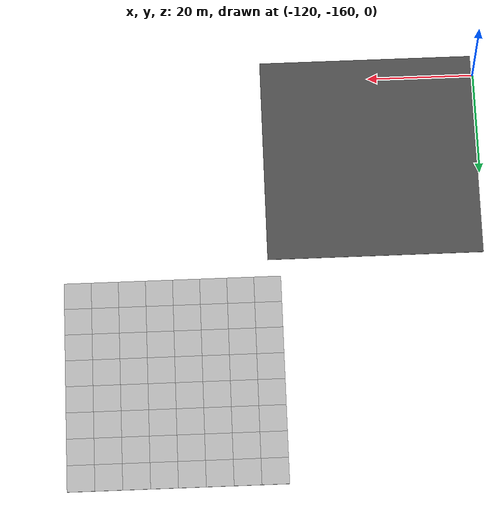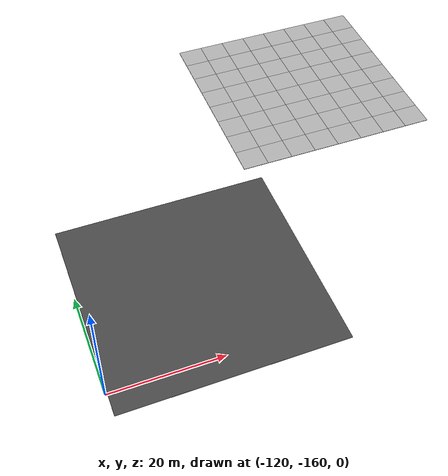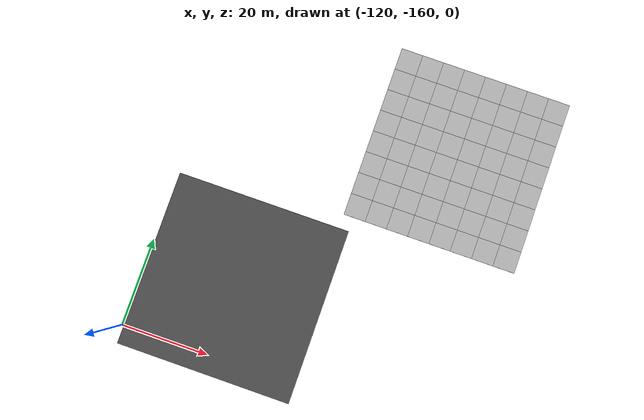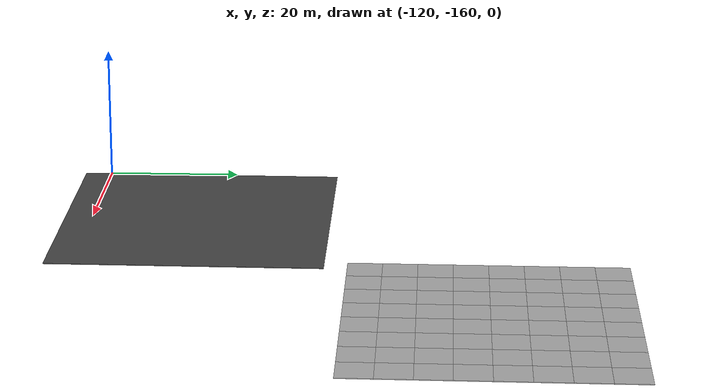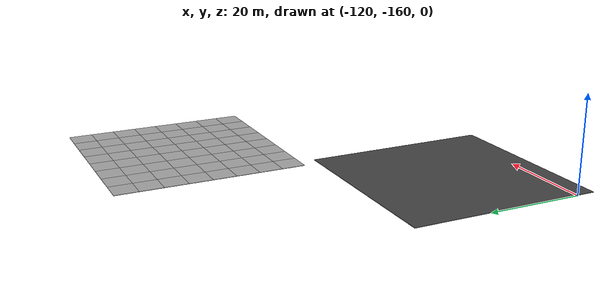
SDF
<sdf version="1.7">
 <world name="default">
  <model name="mud_plane_40x40_6">
   <model name="mud_plane_20x20">
    <model name="mud_plane">
     <static>1</static>
     <link name="link">
      <collision name="collision"><geometry><box><size>10 10 0.1</size></box></geometry></collision>
      <visual name="visual_1">
       <pose>-2.5 2.5 -0.05 0 -0 0</pose>
       <cast_shadows>0</cast_shadows>
       <geometry><box><size>5 5 0.1</size></box></geometry>
       <material>
        <script>
         <uri>model://mud_plane/materials/scripts</uri>
         <uri>model://mud_plane/materials/textures</uri>
         <name>vrc/mud</name>
        </script>
       </material>
      </visual>
      <visual name="visual_2">
       <pose>2.5 2.5 -0.05 0 -0 0</pose>
       <cast_shadows>0</cast_shadows>
       <geometry><box><size>5 5 0.1</size></box></geometry>
       <material>
        <script>
         <uri>model://mud_plane/materials/scripts</uri>
         <uri>model://mud_plane/materials/textures</uri>
         <name>vrc/mud</name>
        </script>
       </material>
      </visual>
      <visual name="visual_3">
       <pose>2.5 -2.5 -0.05 0 -0 0</pose>
       <cast_shadows>0</cast_shadows>
       <geometry><box><size>5 5 0.1</size></box></geometry>
       <material>
        <script>
         <uri>model://mud_plane/materials/scripts</uri>
         <uri>model://mud_plane/materials/textures</uri>
         <name>vrc/mud</name>
        </script>
       </material>
      </visual>
      <visual name="visual_4">
       <pose>-2.5 -2.5 -0.05 0 -0 0</pose>
       <cast_shadows>0</cast_shadows>
       <geometry><box><size>5 5 0.1</size></box></geometry>
       <material>
        <script>
         <uri>model://mud_plane/materials/scripts</uri>
         <uri>model://mud_plane/materials/textures</uri>
         <name>vrc/mud</name>
        </script>
       </material>
      </visual>
     </link>
     <pose>-4.99986 -4.99991 0 0 -0 0</pose>
    </model>
    <model name="mud_plane_0">
     <static>1</static>
     <link name="link">
      <collision name="collision"><geometry><box><size>10 10 0.1</size></box></geometry></collision>
      <visual name="visual_1">
       <pose>-2.5 2.5 -0.05 0 -0 0</pose>
       <cast_shadows>0</cast_shadows>
       <geometry><box><size>5 5 0.1</size></box></geometry>
       <material>
        <script>
         <uri>model://mud_plane/materials/scripts</uri>
         <uri>model://mud_plane/materials/textures</uri>
         <name>vrc/mud</name>
        </script>
       </material>
      </visual>
      <visual name="visual_2">
       <pose>2.5 2.5 -0.05 0 -0 0</pose>
       <cast_shadows>0</cast_shadows>
       <geometry><box><size>5 5 0.1</size></box></geometry>
       <material>
        <script>
         <uri>model://mud_plane/materials/scripts</uri>
         <uri>model://mud_plane/materials/textures</uri>
         <name>vrc/mud</name>
        </script>
       </material>
      </visual>
      <visual name="visual_3">
       <pose>2.5 -2.5 -0.05 0 -0 0</pose>
       <cast_shadows>0</cast_shadows>
       <geometry><box><size>5 5 0.1</size></box></geometry>
       <material>
        <script>
         <uri>model://mud_plane/materials/scripts</uri>
         <uri>model://mud_plane/materials/textures</uri>
         <name>vrc/mud</name>
        </script>
       </material>
      </visual>
      <visual name="visual_4">
       <pose>-2.5 -2.5 -0.05 0 -0 0</pose>
       <cast_shadows>0</cast_shadows>
       <geometry><box><size>5 5 0.1</size></box></geometry>
       <material>
        <script>
         <uri>model://mud_plane/materials/scripts</uri>
         <uri>model://mud_plane/materials/textures</uri>
         <name>vrc/mud</name>
        </script>
       </material>
      </visual>
     </link>
     <pose>-4.99946 4.99954 0 0 -0 0</pose>
    </model>
    <model name="mud_plane_1">
     <static>1</static>
     <link name="link">
      <collision name="collision"><geometry><box><size>10 10 0.1</size></box></geometry></collision>
      <visual name="visual_1">
       <pose>-2.5 2.5 -0.05 0 -0 0</pose>
       <cast_shadows>0</cast_shadows>
       <geometry><box><size>5 5 0.1</size></box></geometry>
       <material>
        <script>
         <uri>model://mud_plane/materials/scripts</uri>
         <uri>model://mud_plane/materials/textures</uri>
         <name>vrc/mud</name>
        </script>
       </material>
      </visual>
      <visual name="visual_2">
       <pose>2.5 2.5 -0.05 0 -0 0</pose>
       <cast_shadows>0</cast_shadows>
       <geometry><box><size>5 5 0.1</size></box></geometry>
       <material>
        <script>
         <uri>model://mud_plane/materials/scripts</uri>
         <uri>model://mud_plane/materials/textures</uri>
         <name>vrc/mud</name>
        </script>
       </material>
      </visual>
      <visual name="visual_3">
       <pose>2.5 -2.5 -0.05 0 -0 0</pose>
       <cast_shadows>0</cast_shadows>
       <geometry><box><size>5 5 0.1</size></box></geometry>
       <material>
        <script>
         <uri>model://mud_plane/materials/scripts</uri>
         <uri>model://mud_plane/materials/textures</uri>
         <name>vrc/mud</name>
        </script>
       </material>
      </visual>
      <visual name="visual_4">
       <pose>-2.5 -2.5 -0.05 0 -0 0</pose>
       <cast_shadows>0</cast_shadows>
       <geometry><box><size>5 5 0.1</size></box></geometry>
       <material>
        <script>
         <uri>model://mud_plane/materials/scripts</uri>
         <uri>model://mud_plane/materials/textures</uri>
         <name>vrc/mud</name>
        </script>
       </material>
      </visual>
     </link>
     <pose>4.99964 -4.99949 0 0 -0 0</pose>
    </model>
    <model name="mud_plane_2">
     <static>1</static>
     <link name="link">
      <collision name="collision"><geometry><box><size>10 10 0.1</size></box></geometry></collision>
      <visual name="visual_1">
       <pose>-2.5 2.5 -0.05 0 -0 0</pose>
       <cast_shadows>0</cast_shadows>
       <geometry><box><size>5 5 0.1</size></box></geometry>
       <material>
        <script>
         <uri>model://mud_plane/materials/scripts</uri>
         <uri>model://mud_plane/materials/textures</uri>
         <name>vrc/mud</name>
        </script>
       </material>
      </visual>
      <visual name="visual_2">
       <pose>2.5 2.5 -0.05 0 -0 0</pose>
       <cast_shadows>0</cast_shadows>
       <geometry><box><size>5 5 0.1</size></box></geometry>
       <material>
        <script>
         <uri>model://mud_plane/materials/scripts</uri>
         <uri>model://mud_plane/materials/textures</uri>
         <name>vrc/mud</name>
        </script>
       </material>
      </visual>
      <visual name="visual_3">
       <pose>2.5 -2.5 -0.05 0 -0 0</pose>
       <cast_shadows>0</cast_shadows>
       <geometry><box><size>5 5 0.1</size></box></geometry>
       <material>
        <script>
         <uri>model://mud_plane/materials/scripts</uri>
         <uri>model://mud_plane/materials/textures</uri>
         <name>vrc/mud</name>
        </script>
       </material>
      </visual>
      <visual name="visual_4">
       <pose>-2.5 -2.5 -0.05 0 -0 0</pose>
       <cast_shadows>0</cast_shadows>
       <geometry><box><size>5 5 0.1</size></box></geometry>
       <material>
        <script>
         <uri>model://mud_plane/materials/scripts</uri>
         <uri>model://mud_plane/materials/textures</uri>
         <name>vrc/mud</name>
        </script>
       </material>
      </visual>
     </link>
     <pose>4.99967 4.99986 0 0 -0 0</pose>
    </model>
    <static>0</static>
    <pose>-9.99895 9.99843 0 0 -0 0</pose>
   </model>
   <model name="mud_plane_20x20_0">
    <model name="mud_plane">
     <static>1</static>
     <link name="link">
      <collision name="collision"><geometry><box><size>10 10 0.1</size></box></geometry></collision>
      <visual name="visual_1">
       <pose>-2.5 2.5 -0.05 0 -0 0</pose>
       <cast_shadows>0</cast_shadows>
       <geometry><box><size>5 5 0.1</size></box></geometry>
       <material>
        <script>
         <uri>model://mud_plane/materials/scripts</uri>
         <uri>model://mud_plane/materials/textures</uri>
         <name>vrc/mud</name>
        </script>
       </material>
      </visual>
      <visual name="visual_2">
       <pose>2.5 2.5 -0.05 0 -0 0</pose>
       <cast_shadows>0</cast_shadows>
       <geometry><box><size>5 5 0.1</size></box></geometry>
       <material>
        <script>
         <uri>model://mud_plane/materials/scripts</uri>
         <uri>model://mud_plane/materials/textures</uri>
         <name>vrc/mud</name>
        </script>
       </material>
      </visual>
      <visual name="visual_3">
       <pose>2.5 -2.5 -0.05 0 -0 0</pose>
       <cast_shadows>0</cast_shadows>
       <geometry><box><size>5 5 0.1</size></box></geometry>
       <material>
        <script>
         <uri>model://mud_plane/materials/scripts</uri>
         <uri>model://mud_plane/materials/textures</uri>
         <name>vrc/mud</name>
        </script>
       </material>
      </visual>
      <visual name="visual_4">
       <pose>-2.5 -2.5 -0.05 0 -0 0</pose>
       <cast_shadows>0</cast_shadows>
       <geometry><box><size>5 5 0.1</size></box></geometry>
       <material>
        <script>
         <uri>model://mud_plane/materials/scripts</uri>
         <uri>model://mud_plane/materials/textures</uri>
         <name>vrc/mud</name>
        </script>
       </material>
      </visual>
     </link>
     <pose>-4.99986 -4.99991 0 0 -0 0</pose>
    </model>
    <model name="mud_plane_0">
     <static>1</static>
     <link name="link">
      <collision name="collision"><geometry><box><size>10 10 0.1</size></box></geometry></collision>
      <visual name="visual_1">
       <pose>-2.5 2.5 -0.05 0 -0 0</pose>
       <cast_shadows>0</cast_shadows>
       <geometry><box><size>5 5 0.1</size></box></geometry>
       <material>
        <script>
         <uri>model://mud_plane/materials/scripts</uri>
         <uri>model://mud_plane/materials/textures</uri>
         <name>vrc/mud</name>
        </script>
       </material>
      </visual>
      <visual name="visual_2">
       <pose>2.5 2.5 -0.05 0 -0 0</pose>
       <cast_shadows>0</cast_shadows>
       <geometry><box><size>5 5 0.1</size></box></geometry>
       <material>
        <script>
         <uri>model://mud_plane/materials/scripts</uri>
         <uri>model://mud_plane/materials/textures</uri>
         <name>vrc/mud</name>
        </script>
       </material>
      </visual>
      <visual name="visual_3">
       <pose>2.5 -2.5 -0.05 0 -0 0</pose>
       <cast_shadows>0</cast_shadows>
       <geometry><box><size>5 5 0.1</size></box></geometry>
       <material>
        <script>
         <uri>model://mud_plane/materials/scripts</uri>
         <uri>model://mud_plane/materials/textures</uri>
         <name>vrc/mud</name>
        </script>
       </material>
      </visual>
      <visual name="visual_4">
       <pose>-2.5 -2.5 -0.05 0 -0 0</pose>
       <cast_shadows>0</cast_shadows>
       <geometry><box><size>5 5 0.1</size></box></geometry>
       <material>
        <script>
         <uri>model://mud_plane/materials/scripts</uri>
         <uri>model://mud_plane/materials/textures</uri>
         <name>vrc/mud</name>
        </script>
       </material>
      </visual>
     </link>
     <pose>-4.99946 4.99954 0 0 -0 0</pose>
    </model>
    <model name="mud_plane_1">
     <static>1</static>
     <link name="link">
      <collision name="collision"><geometry><box><size>10 10 0.1</size></box></geometry></collision>
      <visual name="visual_1">
       <pose>-2.5 2.5 -0.05 0 -0 0</pose>
       <cast_shadows>0</cast_shadows>
       <geometry><box><size>5 5 0.1</size></box></geometry>
       <material>
        <script>
         <uri>model://mud_plane/materials/scripts</uri>
         <uri>model://mud_plane/materials/textures</uri>
         <name>vrc/mud</name>
        </script>
       </material>
      </visual>
      <visual name="visual_2">
       <pose>2.5 2.5 -0.05 0 -0 0</pose>
       <cast_shadows>0</cast_shadows>
       <geometry><box><size>5 5 0.1</size></box></geometry>
       <material>
        <script>
         <uri>model://mud_plane/materials/scripts</uri>
         <uri>model://mud_plane/materials/textures</uri>
         <name>vrc/mud</name>
        </script>
       </material>
      </visual>
      <visual name="visual_3">
       <pose>2.5 -2.5 -0.05 0 -0 0</pose>
       <cast_shadows>0</cast_shadows>
       <geometry><box><size>5 5 0.1</size></box></geometry>
       <material>
        <script>
         <uri>model://mud_plane/materials/scripts</uri>
         <uri>model://mud_plane/materials/textures</uri>
         <name>vrc/mud</name>
        </script>
       </material>
      </visual>
      <visual name="visual_4">
       <pose>-2.5 -2.5 -0.05 0 -0 0</pose>
       <cast_shadows>0</cast_shadows>
       <geometry><box><size>5 5 0.1</size></box></geometry>
       <material>
        <script>
         <uri>model://mud_plane/materials/scripts</uri>
         <uri>model://mud_plane/materials/textures</uri>
         <name>vrc/mud</name>
        </script>
       </material>
      </visual>
     </link>
     <pose>4.99964 -4.99949 0 0 -0 0</pose>
    </model>
    <model name="mud_plane_2">
     <static>1</static>
     <link name="link">
      <collision name="collision"><geometry><box><size>10 10 0.1</size></box></geometry></collision>
      <visual name="visual_1">
       <pose>-2.5 2.5 -0.05 0 -0 0</pose>
       <cast_shadows>0</cast_shadows>
       <geometry><box><size>5 5 0.1</size></box></geometry>
       <material>
        <script>
         <uri>model://mud_plane/materials/scripts</uri>
         <uri>model://mud_plane/materials/textures</uri>
         <name>vrc/mud</name>
        </script>
       </material>
      </visual>
      <visual name="visual_2">
       <pose>2.5 2.5 -0.05 0 -0 0</pose>
       <cast_shadows>0</cast_shadows>
       <geometry><box><size>5 5 0.1</size></box></geometry>
       <material>
        <script>
         <uri>model://mud_plane/materials/scripts</uri>
         <uri>model://mud_plane/materials/textures</uri>
         <name>vrc/mud</name>
        </script>
       </material>
      </visual>
      <visual name="visual_3">
       <pose>2.5 -2.5 -0.05 0 -0 0</pose>
       <cast_shadows>0</cast_shadows>
       <geometry><box><size>5 5 0.1</size></box></geometry>
       <material>
        <script>
         <uri>model://mud_plane/materials/scripts</uri>
         <uri>model://mud_plane/materials/textures</uri>
         <name>vrc/mud</name>
        </script>
       </material>
      </visual>
      <visual name="visual_4">
       <pose>-2.5 -2.5 -0.05 0 -0 0</pose>
       <cast_shadows>0</cast_shadows>
       <geometry><box><size>5 5 0.1</size></box></geometry>
       <material>
        <script>
         <uri>model://mud_plane/materials/scripts</uri>
         <uri>model://mud_plane/materials/textures</uri>
         <name>vrc/mud</name>
        </script>
       </material>
      </visual>
     </link>
     <pose>4.99967 4.99986 0 0 -0 0</pose>
    </model>
    <static>0</static>
    <pose>9.99933 9.9997 0 0 -0 0</pose>
   </model>
   <model name="mud_plane_20x20_1">
    <model name="mud_plane">
     <static>1</static>
     <link name="link">
      <collision name="collision"><geometry><box><size>10 10 0.1</size></box></geometry></collision>
      <visual name="visual_1">
       <pose>-2.5 2.5 -0.05 0 -0 0</pose>
       <cast_shadows>0</cast_shadows>
       <geometry><box><size>5 5 0.1</size></box></geometry>
       <material>
        <script>
         <uri>model://mud_plane/materials/scripts</uri>
         <uri>model://mud_plane/materials/textures</uri>
         <name>vrc/mud</name>
        </script>
       </material>
      </visual>
      <visual name="visual_2">
       <pose>2.5 2.5 -0.05 0 -0 0</pose>
       <cast_shadows>0</cast_shadows>
       <geometry><box><size>5 5 0.1</size></box></geometry>
       <material>
        <script>
         <uri>model://mud_plane/materials/scripts</uri>
         <uri>model://mud_plane/materials/textures</uri>
         <name>vrc/mud</name>
        </script>
       </material>
      </visual>
      <visual name="visual_3">
       <pose>2.5 -2.5 -0.05 0 -0 0</pose>
       <cast_shadows>0</cast_shadows>
       <geometry><box><size>5 5 0.1</size></box></geometry>
       <material>
        <script>
         <uri>model://mud_plane/materials/scripts</uri>
         <uri>model://mud_plane/materials/textures</uri>
         <name>vrc/mud</name>
        </script>
       </material>
      </visual>
      <visual name="visual_4">
       <pose>-2.5 -2.5 -0.05 0 -0 0</pose>
       <cast_shadows>0</cast_shadows>
       <geometry><box><size>5 5 0.1</size></box></geometry>
       <material>
        <script>
         <uri>model://mud_plane/materials/scripts</uri>
         <uri>model://mud_plane/materials/textures</uri>
         <name>vrc/mud</name>
        </script>
       </material>
      </visual>
     </link>
     <pose>-4.99986 -4.99991 0 0 -0 0</pose>
    </model>
    <model name="mud_plane_0">
     <static>1</static>
     <link name="link">
      <collision name="collision"><geometry><box><size>10 10 0.1</size></box></geometry></collision>
      <visual name="visual_1">
       <pose>-2.5 2.5 -0.05 0 -0 0</pose>
       <cast_shadows>0</cast_shadows>
       <geometry><box><size>5 5 0.1</size></box></geometry>
       <material>
        <script>
         <uri>model://mud_plane/materials/scripts</uri>
         <uri>model://mud_plane/materials/textures</uri>
         <name>vrc/mud</name>
        </script>
       </material>
      </visual>
      <visual name="visual_2">
       <pose>2.5 2.5 -0.05 0 -0 0</pose>
       <cast_shadows>0</cast_shadows>
       <geometry><box><size>5 5 0.1</size></box></geometry>
       <material>
        <script>
         <uri>model://mud_plane/materials/scripts</uri>
         <uri>model://mud_plane/materials/textures</uri>
         <name>vrc/mud</name>
        </script>
       </material>
      </visual>
      <visual name="visual_3">
       <pose>2.5 -2.5 -0.05 0 -0 0</pose>
       <cast_shadows>0</cast_shadows>
       <geometry><box><size>5 5 0.1</size></box></geometry>
       <material>
        <script>
         <uri>model://mud_plane/materials/scripts</uri>
         <uri>model://mud_plane/materials/textures</uri>
         <name>vrc/mud</name>
        </script>
       </material>
      </visual>
      <visual name="visual_4">
       <pose>-2.5 -2.5 -0.05 0 -0 0</pose>
       <cast_shadows>0</cast_shadows>
       <geometry><box><size>5 5 0.1</size></box></geometry>
       <material>
        <script>
         <uri>model://mud_plane/materials/scripts</uri>
         <uri>model://mud_plane/materials/textures</uri>
         <name>vrc/mud</name>
        </script>
       </material>
      </visual>
     </link>
     <pose>-4.99946 4.99954 0 0 -0 0</pose>
    </model>
    <model name="mud_plane_1">
     <static>1</static>
     <link name="link">
      <collision name="collision"><geometry><box><size>10 10 0.1</size></box></geometry></collision>
      <visual name="visual_1">
       <pose>-2.5 2.5 -0.05 0 -0 0</pose>
       <cast_shadows>0</cast_shadows>
       <geometry><box><size>5 5 0.1</size></box></geometry>
       <material>
        <script>
         <uri>model://mud_plane/materials/scripts</uri>
         <uri>model://mud_plane/materials/textures</uri>
         <name>vrc/mud</name>
        </script>
       </material>
      </visual>
      <visual name="visual_2">
       <pose>2.5 2.5 -0.05 0 -0 0</pose>
       <cast_shadows>0</cast_shadows>
       <geometry><box><size>5 5 0.1</size></box></geometry>
       <material>
        <script>
         <uri>model://mud_plane/materials/scripts</uri>
         <uri>model://mud_plane/materials/textures</uri>
         <name>vrc/mud</name>
        </script>
       </material>
      </visual>
      <visual name="visual_3">
       <pose>2.5 -2.5 -0.05 0 -0 0</pose>
       <cast_shadows>0</cast_shadows>
       <geometry><box><size>5 5 0.1</size></box></geometry>
       <material>
        <script>
         <uri>model://mud_plane/materials/scripts</uri>
         <uri>model://mud_plane/materials/textures</uri>
         <name>vrc/mud</name>
        </script>
       </material>
      </visual>
      <visual name="visual_4">
       <pose>-2.5 -2.5 -0.05 0 -0 0</pose>
       <cast_shadows>0</cast_shadows>
       <geometry><box><size>5 5 0.1</size></box></geometry>
       <material>
        <script>
         <uri>model://mud_plane/materials/scripts</uri>
         <uri>model://mud_plane/materials/textures</uri>
         <name>vrc/mud</name>
        </script>
       </material>
      </visual>
     </link>
     <pose>4.99964 -4.99949 0 0 -0 0</pose>
    </model>
    <model name="mud_plane_2">
     <static>1</static>
     <link name="link">
      <collision name="collision"><geometry><box><size>10 10 0.1</size></box></geometry></collision>
      <visual name="visual_1">
       <pose>-2.5 2.5 -0.05 0 -0 0</pose>
       <cast_shadows>0</cast_shadows>
       <geometry><box><size>5 5 0.1</size></box></geometry>
       <material>
        <script>
         <uri>model://mud_plane/materials/scripts</uri>
         <uri>model://mud_plane/materials/textures</uri>
         <name>vrc/mud</name>
        </script>
       </material>
      </visual>
      <visual name="visual_2">
       <pose>2.5 2.5 -0.05 0 -0 0</pose>
       <cast_shadows>0</cast_shadows>
       <geometry><box><size>5 5 0.1</size></box></geometry>
       <material>
        <script>
         <uri>model://mud_plane/materials/scripts</uri>
         <uri>model://mud_plane/materials/textures</uri>
         <name>vrc/mud</name>
        </script>
       </material>
      </visual>
      <visual name="visual_3">
       <pose>2.5 -2.5 -0.05 0 -0 0</pose>
       <cast_shadows>0</cast_shadows>
       <geometry><box><size>5 5 0.1</size></box></geometry>
       <material>
        <script>
         <uri>model://mud_plane/materials/scripts</uri>
         <uri>model://mud_plane/materials/textures</uri>
         <name>vrc/mud</name>
        </script>
       </material>
      </visual>
      <visual name="visual_4">
       <pose>-2.5 -2.5 -0.05 0 -0 0</pose>
       <cast_shadows>0</cast_shadows>
       <geometry><box><size>5 5 0.1</size></box></geometry>
       <material>
        <script>
         <uri>model://mud_plane/materials/scripts</uri>
         <uri>model://mud_plane/materials/textures</uri>
         <name>vrc/mud</name>
        </script>
       </material>
      </visual>
     </link>
     <pose>4.99967 4.99986 0 0 -0 0</pose>
    </model>
    <static>0</static>
    <pose>9.9993 -9.99877 0 0 -0 0</pose>
   </model>
   <model name="mud_plane_20x20_2">
    <model name="mud_plane">
     <static>1</static>
     <link name="link">
      <collision name="collision"><geometry><box><size>10 10 0.1</size></box></geometry></collision>
      <visual name="visual_1">
       <pose>-2.5 2.5 -0.05 0 -0 0</pose>
       <cast_shadows>0</cast_shadows>
       <geometry><box><size>5 5 0.1</size></box></geometry>
       <material>
        <script>
         <uri>model://mud_plane/materials/scripts</uri>
         <uri>model://mud_plane/materials/textures</uri>
         <name>vrc/mud</name>
        </script>
       </material>
      </visual>
      <visual name="visual_2">
       <pose>2.5 2.5 -0.05 0 -0 0</pose>
       <cast_shadows>0</cast_shadows>
       <geometry><box><size>5 5 0.1</size></box></geometry>
       <material>
        <script>
         <uri>model://mud_plane/materials/scripts</uri>
         <uri>model://mud_plane/materials/textures</uri>
         <name>vrc/mud</name>
        </script>
       </material>
      </visual>
      <visual name="visual_3">
       <pose>2.5 -2.5 -0.05 0 -0 0</pose>
       <cast_shadows>0</cast_shadows>
       <geometry><box><size>5 5 0.1</size></box></geometry>
       <material>
        <script>
         <uri>model://mud_plane/materials/scripts</uri>
         <uri>model://mud_plane/materials/textures</uri>
         <name>vrc/mud</name>
        </script>
       </material>
      </visual>
      <visual name="visual_4">
       <pose>-2.5 -2.5 -0.05 0 -0 0</pose>
       <cast_shadows>0</cast_shadows>
       <geometry><box><size>5 5 0.1</size></box></geometry>
       <material>
        <script>
         <uri>model://mud_plane/materials/scripts</uri>
         <uri>model://mud_plane/materials/textures</uri>
         <name>vrc/mud</name>
        </script>
       </material>
      </visual>
     </link>
     <pose>-4.99986 -4.99991 0 0 -0 0</pose>
    </model>
    <model name="mud_plane_0">
     <static>1</static>
     <link name="link">
      <collision name="collision"><geometry><box><size>10 10 0.1</size></box></geometry></collision>
      <visual name="visual_1">
       <pose>-2.5 2.5 -0.05 0 -0 0</pose>
       <cast_shadows>0</cast_shadows>
       <geometry><box><size>5 5 0.1</size></box></geometry>
       <material>
        <script>
         <uri>model://mud_plane/materials/scripts</uri>
         <uri>model://mud_plane/materials/textures</uri>
         <name>vrc/mud</name>
        </script>
       </material>
      </visual>
      <visual name="visual_2">
       <pose>2.5 2.5 -0.05 0 -0 0</pose>
       <cast_shadows>0</cast_shadows>
       <geometry><box><size>5 5 0.1</size></box></geometry>
       <material>
        <script>
         <uri>model://mud_plane/materials/scripts</uri>
         <uri>model://mud_plane/materials/textures</uri>
         <name>vrc/mud</name>
        </script>
       </material>
      </visual>
      <visual name="visual_3">
       <pose>2.5 -2.5 -0.05 0 -0 0</pose>
       <cast_shadows>0</cast_shadows>
       <geometry><box><size>5 5 0.1</size></box></geometry>
       <material>
        <script>
         <uri>model://mud_plane/materials/scripts</uri>
         <uri>model://mud_plane/materials/textures</uri>
         <name>vrc/mud</name>
        </script>
       </material>
      </visual>
      <visual name="visual_4">
       <pose>-2.5 -2.5 -0.05 0 -0 0</pose>
       <cast_shadows>0</cast_shadows>
       <geometry><box><size>5 5 0.1</size></box></geometry>
       <material>
        <script>
         <uri>model://mud_plane/materials/scripts</uri>
         <uri>model://mud_plane/materials/textures</uri>
         <name>vrc/mud</name>
        </script>
       </material>
      </visual>
     </link>
     <pose>-4.99946 4.99954 0 0 -0 0</pose>
    </model>
    <model name="mud_plane_1">
     <static>1</static>
     <link name="link">
      <collision name="collision"><geometry><box><size>10 10 0.1</size></box></geometry></collision>
      <visual name="visual_1">
       <pose>-2.5 2.5 -0.05 0 -0 0</pose>
       <cast_shadows>0</cast_shadows>
       <geometry><box><size>5 5 0.1</size></box></geometry>
       <material>
        <script>
         <uri>model://mud_plane/materials/scripts</uri>
         <uri>model://mud_plane/materials/textures</uri>
         <name>vrc/mud</name>
        </script>
       </material>
      </visual>
      <visual name="visual_2">
       <pose>2.5 2.5 -0.05 0 -0 0</pose>
       <cast_shadows>0</cast_shadows>
       <geometry><box><size>5 5 0.1</size></box></geometry>
       <material>
        <script>
         <uri>model://mud_plane/materials/scripts</uri>
         <uri>model://mud_plane/materials/textures</uri>
         <name>vrc/mud</name>
        </script>
       </material>
      </visual>
      <visual name="visual_3">
       <pose>2.5 -2.5 -0.05 0 -0 0</pose>
       <cast_shadows>0</cast_shadows>
       <geometry><box><size>5 5 0.1</size></box></geometry>
       <material>
        <script>
         <uri>model://mud_plane/materials/scripts</uri>
         <uri>model://mud_plane/materials/textures</uri>
         <name>vrc/mud</name>
        </script>
       </material>
      </visual>
      <visual name="visual_4">
       <pose>-2.5 -2.5 -0.05 0 -0 0</pose>
       <cast_shadows>0</cast_shadows>
       <geometry><box><size>5 5 0.1</size></box></geometry>
       <material>
        <script>
         <uri>model://mud_plane/materials/scripts</uri>
         <uri>model://mud_plane/materials/textures</uri>
         <name>vrc/mud</name>
        </script>
       </material>
      </visual>
     </link>
     <pose>4.99964 -4.99949 0 0 -0 0</pose>
    </model>
    <model name="mud_plane_2">
     <static>1</static>
     <link name="link">
      <collision name="collision"><geometry><box><size>10 10 0.1</size></box></geometry></collision>
      <visual name="visual_1">
       <pose>-2.5 2.5 -0.05 0 -0 0</pose>
       <cast_shadows>0</cast_shadows>
       <geometry><box><size>5 5 0.1</size></box></geometry>
       <material>
        <script>
         <uri>model://mud_plane/materials/scripts</uri>
         <uri>model://mud_plane/materials/textures</uri>
         <name>vrc/mud</name>
        </script>
       </material>
      </visual>
      <visual name="visual_2">
       <pose>2.5 2.5 -0.05 0 -0 0</pose>
       <cast_shadows>0</cast_shadows>
       <geometry><box><size>5 5 0.1</size></box></geometry>
       <material>
        <script>
         <uri>model://mud_plane/materials/scripts</uri>
         <uri>model://mud_plane/materials/textures</uri>
         <name>vrc/mud</name>
        </script>
       </material>
      </visual>
      <visual name="visual_3">
       <pose>2.5 -2.5 -0.05 0 -0 0</pose>
       <cast_shadows>0</cast_shadows>
       <geometry><box><size>5 5 0.1</size></box></geometry>
       <material>
        <script>
         <uri>model://mud_plane/materials/scripts</uri>
         <uri>model://mud_plane/materials/textures</uri>
         <name>vrc/mud</name>
        </script>
       </material>
      </visual>
      <visual name="visual_4">
       <pose>-2.5 -2.5 -0.05 0 -0 0</pose>
       <cast_shadows>0</cast_shadows>
       <geometry><box><size>5 5 0.1</size></box></geometry>
       <material>
        <script>
         <uri>model://mud_plane/materials/scripts</uri>
         <uri>model://mud_plane/materials/textures</uri>
         <name>vrc/mud</name>
        </script>
       </material>
      </visual>
     </link>
     <pose>4.99967 4.99986 0 0 -0 0</pose>
    </model>
    <static>0</static>
    <pose>-9.99969 -9.99935 0 0 -0 0</pose>
   </model>
   <static>0</static>
   <pose>-61.9513 -100.795 0 0 -0 0</pose>
  </model>
  <model name="asphalt_plane_40x40_0">
   <pose>-99.6737 -144.097 -0.05 0 -0 0</pose>
   <static>1</static>
   <link name="link">
    <collision name="collision"><geometry><box><size>40 40 0.1</size></box></geometry></collision>
    <visual name="visual">
     <cast_shadows>0</cast_shadows>
     <geometry><box><size>40 40 0.1</size></box></geometry>
     <material>
      <script>
       <uri>model://asphalt_plane_40x40/materials/scripts</uri>
       <uri>model://asphalt_plane_40x40/materials/textures</uri>
       <name>vrc/asphalt</name>
      </script>
     </material>
    </visual>
   </link>
  </model>
 </world>
</sdf>
